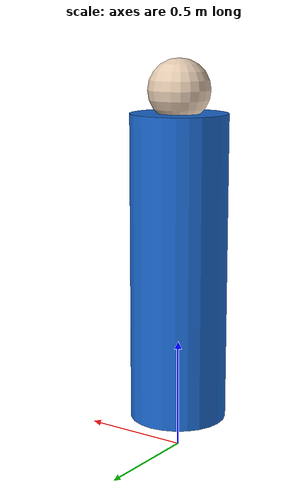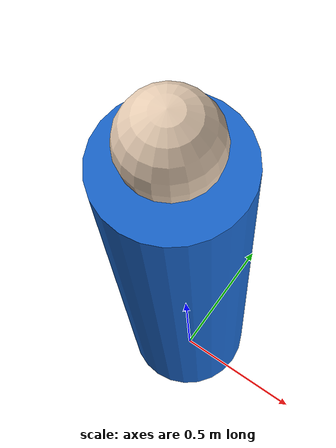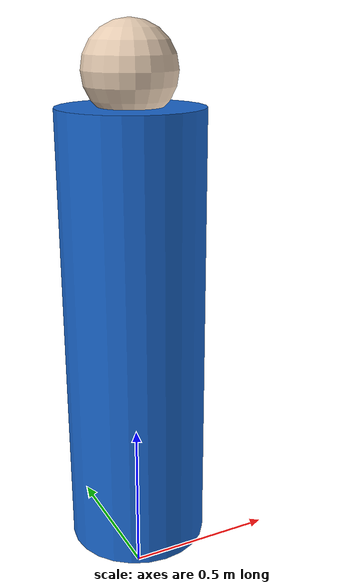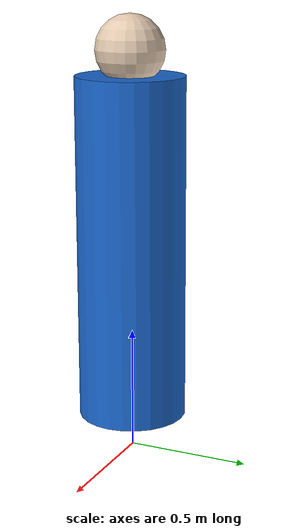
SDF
<?xml version="1.0" ?>
<sdf version="1.6">
  <model name="person_target">
    <static>false</static>
    <pose>0 0 0 0 0 0</pose>

    <link name="base_link">
      <pose>0 0 0 0 0 0</pose>

      <inertial>
        <mass>60.0</mass>
        <inertia>
          <ixx>10.0</ixx>
          <iyy>10.0</iyy>
          <izz>2.0</izz>
          <ixy>0.0</ixy>
          <ixz>0.0</ixz>
          <iyz>0.0</iyz>
        </inertia>
      </inertial>

      <!-- Tronco -->
      <collision name="body_collision">
        <pose>0 0 0.85 0 0 0</pose>
        <geometry>
          <cylinder>
            <radius>0.22</radius>
            <length>1.40</length>
          </cylinder>
        </geometry>
      </collision>

      <visual name="body_visual">
        <pose>0 0 0.85 0 0 0</pose>
        <geometry>
          <cylinder>
            <radius>0.22</radius>
            <length>1.40</length>
          </cylinder>
        </geometry>
        <material>
          <ambient>0.1 0.4 0.8 1</ambient>
          <diffuse>0.1 0.4 0.8 1</diffuse>
        </material>
      </visual>

      <!-- Cabeza -->
      <collision name="head_collision">
        <pose>0 0 1.65 0 0 0</pose>
        <geometry>
          <sphere>
            <radius>0.14</radius>
          </sphere>
        </geometry>
      </collision>

      <visual name="head_visual">
        <pose>0 0 1.65 0 0 0</pose>
        <geometry>
          <sphere>
            <radius>0.14</radius>
          </sphere>
        </geometry>
        <material>
          <ambient>0.9 0.8 0.7 1</ambient>
          <diffuse>0.9 0.8 0.7 1</diffuse>
        </material>
      </visual>
    </link>
  </model>
</sdf>
